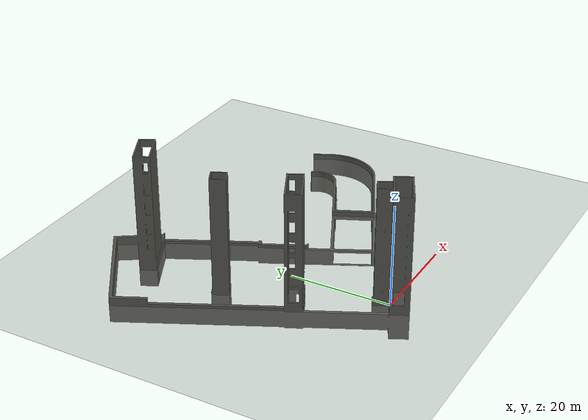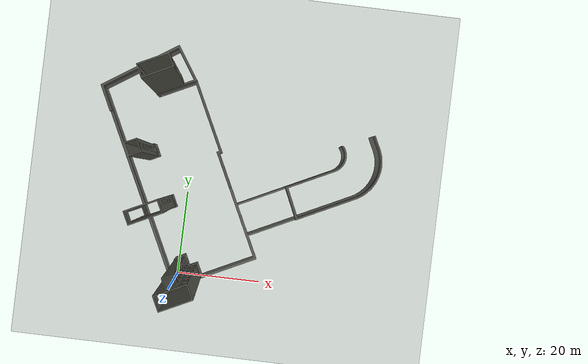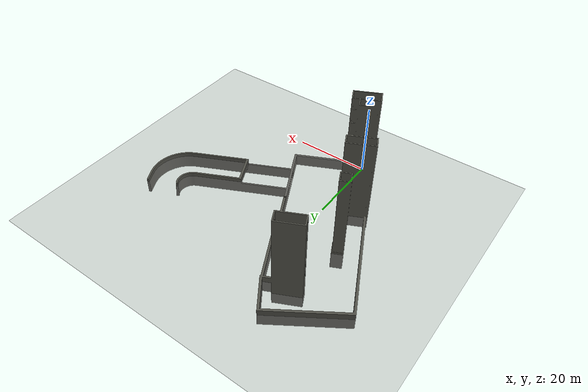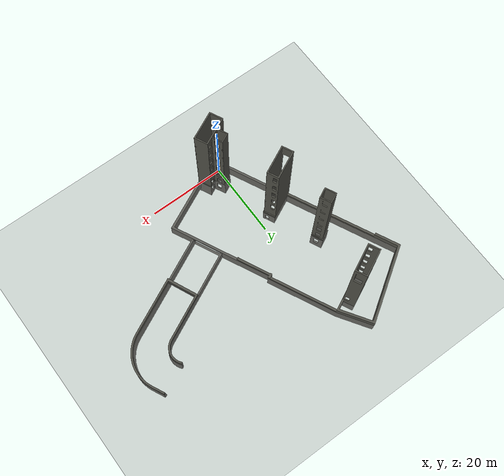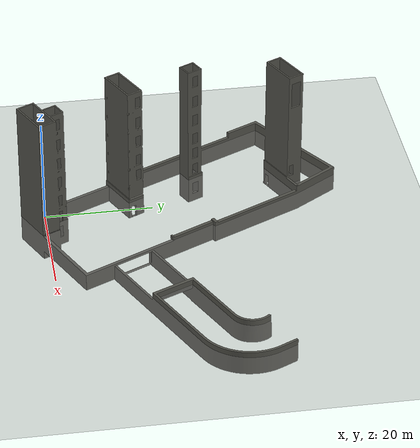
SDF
<?xml version="1.0" ?>
<sdf version="1.6">
  <world name="default">

    <include>
      <uri>model://sun</uri>
    </include>

    <model name="floor">
      <static>true</static>
      <link name="link">
        <collision name="collision">
          <geometry>
            <plane>
              <normal>0 0 1</normal>
              <size>100 100</size>
            </plane>
          </geometry>
          <surface>
        <friction>
          <ode>
            <mu>100.0</mu>
            <mu2>100.0</mu2>
          </ode>
        </friction>
        </surface>
        </collision>
        <visual name="visual">
          <geometry>
            <plane>
              <normal>0 0 1</normal>
              <size>150 150</size>
            </plane>
          </geometry>
          <material>
            <ambient>0.5 0.5 0.5 1</ambient>
            <diffuse>0.5 0.5 0.5 1</diffuse>
            <specular>0.1 0.1 0.1 1</specular>
          </material>
        </visual>
      </link>
    </model>

    <!-- BIM Site embedded directly -->
    <model name="bim_site">
      <static>true</static>
      <pose>0 0 0 1.5708 0 1.5708</pose>
      <link name="link">
        <collision name="collision">
          <geometry>
            <mesh>
              <uri>model://project_a_description/meshes/bim_world_1.dae</uri>
              <scale>1 1 1</scale>
            </mesh>
          </geometry>
        </collision>
        <visual name="visual">
          <geometry>
            <mesh>
              <uri>model://project_a_description/meshes/bim_world_1.dae</uri>
              <scale>1 1 1</scale>
            </mesh>
          </geometry>
        </visual>
      </link>
    </model>

  </world>
</sdf>
